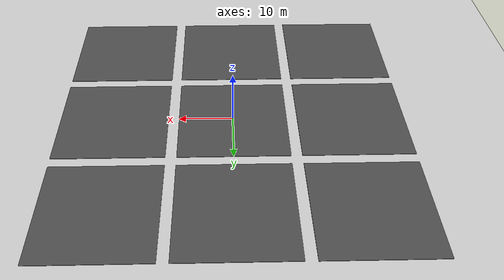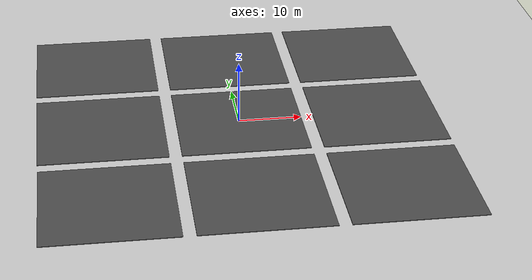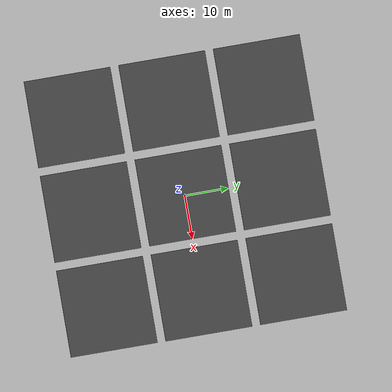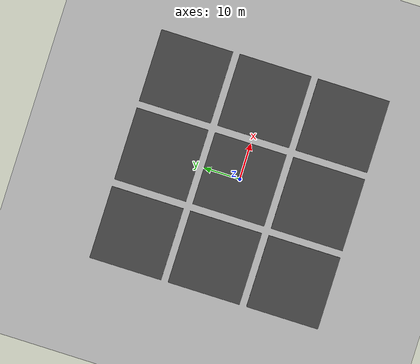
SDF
<sdf version="1.6">
 <world name="default">
  <model name="ground_plane">
   <static>1</static>
   <link name="link">
    <collision name="collision">
     <geometry><plane><normal>0 0 1</normal><size>100 100</size></plane></geometry>
     <surface><friction><ode><mu>100</mu><mu2>50</mu2></ode></friction></surface>
    </collision>
    <visual name="visual">
     <cast_shadows>0</cast_shadows>
     <geometry><plane><normal>0 0 1</normal><size>100 100</size></plane></geometry>
     <material>
      <script><uri>file://media/materials/scripts/gazebo.material</uri><name>Gazebo/Grey</name></script>
     </material>
    </visual>
   </link>
  </model>
  <model name="asphalt_plane">
   <static>1</static>
   <link name="link">
    <collision name="collision"><geometry><box><size>20 20 0.1</size></box></geometry></collision>
    <visual name="visual">
     <cast_shadows>0</cast_shadows>
     <geometry><box><size>20 20 0.1</size></box></geometry>
     <material>
      <script>
       <uri>model://asphalt_plane/materials/scripts</uri>
       <uri>model://asphalt_plane/materials/textures</uri>
       <name>vrc/asphalt</name>
      </script>
     </material>
    </visual>
   </link>
   <pose>-21.9717 21.9876 0 0 -0 0</pose>
  </model>
  <model name="asphalt_plane_clone">
   <static>1</static>
   <link name="link">
    <collision name="collision"><geometry><box><size>20 20 0.1</size></box></geometry></collision>
    <visual name="visual">
     <cast_shadows>0</cast_shadows>
     <geometry><box><size>20 20 0.1</size></box></geometry>
     <material>
      <script>
       <uri>model://asphalt_plane/materials/scripts</uri>
       <uri>model://asphalt_plane/materials/textures</uri>
       <name>vrc/asphalt</name>
      </script>
     </material>
    </visual>
   </link>
   <pose>-21.9682 0.043571 0 0 -0 0</pose>
  </model>
  <model name="asphalt_plane_clone_0">
   <static>1</static>
   <link name="link">
    <collision name="collision"><geometry><box><size>20 20 0.1</size></box></geometry></collision>
    <visual name="visual">
     <cast_shadows>0</cast_shadows>
     <geometry><box><size>20 20 0.1</size></box></geometry>
     <material>
      <script>
       <uri>model://asphalt_plane/materials/scripts</uri>
       <uri>model://asphalt_plane/materials/textures</uri>
       <name>vrc/asphalt</name>
      </script>
     </material>
    </visual>
   </link>
   <pose>-21.9091 -21.9067 0 0 -0 0</pose>
  </model>
  <model name="asphalt_plane_clone_1">
   <static>1</static>
   <link name="link">
    <collision name="collision"><geometry><box><size>20 20 0.1</size></box></geometry></collision>
    <visual name="visual">
     <cast_shadows>0</cast_shadows>
     <geometry><box><size>20 20 0.1</size></box></geometry>
     <material>
      <script>
       <uri>model://asphalt_plane/materials/scripts</uri>
       <uri>model://asphalt_plane/materials/textures</uri>
       <name>vrc/asphalt</name>
      </script>
     </material>
    </visual>
   </link>
   <pose>0.008646 -21.8906 0 0 -0 0</pose>
  </model>
  <model name="asphalt_plane_clone_2">
   <static>1</static>
   <link name="link">
    <collision name="collision"><geometry><box><size>20 20 0.1</size></box></geometry></collision>
    <visual name="visual">
     <cast_shadows>0</cast_shadows>
     <geometry><box><size>20 20 0.1</size></box></geometry>
     <material>
      <script>
       <uri>model://asphalt_plane/materials/scripts</uri>
       <uri>model://asphalt_plane/materials/textures</uri>
       <name>vrc/asphalt</name>
      </script>
     </material>
    </visual>
   </link>
   <pose>-0.019443 0.053939 0 0 -0 0</pose>
  </model>
  <model name="asphalt_plane_clone_3">
   <static>1</static>
   <link name="link">
    <collision name="collision"><geometry><box><size>20 20 0.1</size></box></geometry></collision>
    <visual name="visual">
     <cast_shadows>0</cast_shadows>
     <geometry><box><size>20 20 0.1</size></box></geometry>
     <material>
      <script>
       <uri>model://asphalt_plane/materials/scripts</uri>
       <uri>model://asphalt_plane/materials/textures</uri>
       <name>vrc/asphalt</name>
      </script>
     </material>
    </visual>
   </link>
   <pose>0.012872 21.9585 0 0 -0 0</pose>
  </model>
  <model name="asphalt_plane_clone_4">
   <static>1</static>
   <link name="link">
    <collision name="collision"><geometry><box><size>20 20 0.1</size></box></geometry></collision>
    <visual name="visual">
     <cast_shadows>0</cast_shadows>
     <geometry><box><size>20 20 0.1</size></box></geometry>
     <material>
      <script>
       <uri>model://asphalt_plane/materials/scripts</uri>
       <uri>model://asphalt_plane/materials/textures</uri>
       <name>vrc/asphalt</name>
      </script>
     </material>
    </visual>
   </link>
   <pose>21.9209 -21.8924 0 0 -0 0</pose>
  </model>
  <model name="asphalt_plane_clone_5">
   <static>1</static>
   <link name="link">
    <collision name="collision"><geometry><box><size>20 20 0.1</size></box></geometry></collision>
    <visual name="visual">
     <cast_shadows>0</cast_shadows>
     <geometry><box><size>20 20 0.1</size></box></geometry>
     <material>
      <script>
       <uri>model://asphalt_plane/materials/scripts</uri>
       <uri>model://asphalt_plane/materials/textures</uri>
       <name>vrc/asphalt</name>
      </script>
     </material>
    </visual>
   </link>
   <pose>21.9531 0.018729 0 0 -0 0</pose>
  </model>
  <model name="asphalt_plane_clone_6">
   <static>1</static>
   <link name="link">
    <collision name="collision"><geometry><box><size>20 20 0.1</size></box></geometry></collision>
    <visual name="visual">
     <cast_shadows>0</cast_shadows>
     <geometry><box><size>20 20 0.1</size></box></geometry>
     <material>
      <script>
       <uri>model://asphalt_plane/materials/scripts</uri>
       <uri>model://asphalt_plane/materials/textures</uri>
       <name>vrc/asphalt</name>
      </script>
     </material>
    </visual>
   </link>
   <pose>21.9217 21.9458 0 0 -0 0</pose>
  </model>
 </world>
</sdf>
